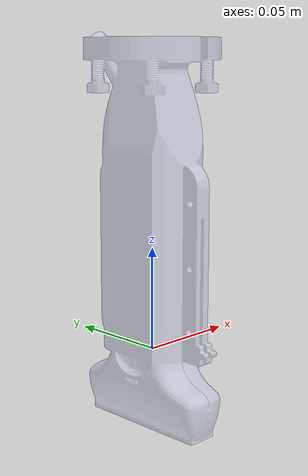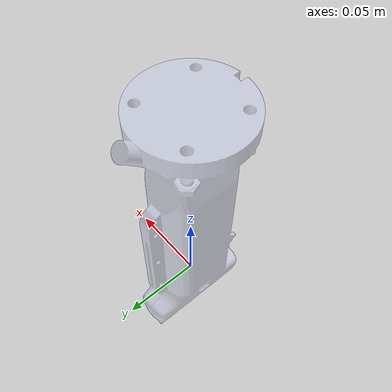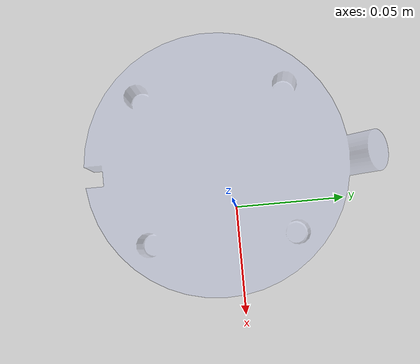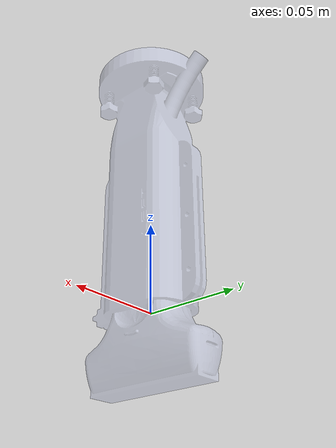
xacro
<?xml version="1.0"?>
<robot xmlns:xacro="http://www.ros.org/wiki/xacro" name="Ultra_Sensor">
  <link name="base_link">
    <inertial>
      <mass value="0.27748" />
      <inertia
        ixx="0.000772393706918962"
        ixy="3.62561532781402E-07"
        ixz="-8.97669927346242E-06"
        iyy="-5.67458125370052E-06"
        iyz="-9.70334791219381E-05"
        izz="5.67458125370057E-06" />
    </inertial>
    <visual>
      <origin
        xyz="0 0 0"
        rpy="0 0 0" />
      <geometry>
        <mesh
          filename="package://sensor_description/meshes/Ultra_Sensor.STL" />
      </geometry>
      <material name="">
        <color rgba="0.79216 0.81961 0.93333 0.5" />
      </material>
    </visual>
    <collision>
      <origin
        xyz="0 0 0"
        rpy="0 0 0" />
      <geometry>
        <mesh
          filename="package://sensor_description/meshes/Ultra_Sensor.STL" />
      </geometry>
    </collision>
  </link>

  <!-- manually add conditional block (work for .xacro in Hydro) -->
  <!-- value="true" if spawned individually;
       value="false" if spawned as the eef of ur5 -->
  <xacro:if value="false" >
  <link name="world"/>
  <joint name="world_joint" type="fixed">
    <parent link="world"/>
    <child link="base_link"/>
    <origin rpy="0.0 0.0 0.0" xyz="1.0 1.0 1.0"/>
  </joint>
</xacro:if>

</robot>
